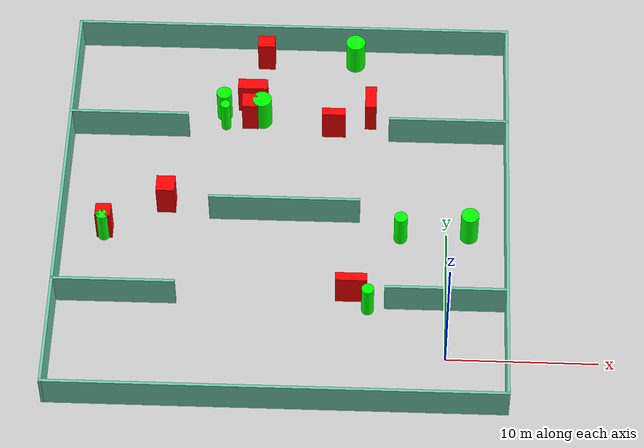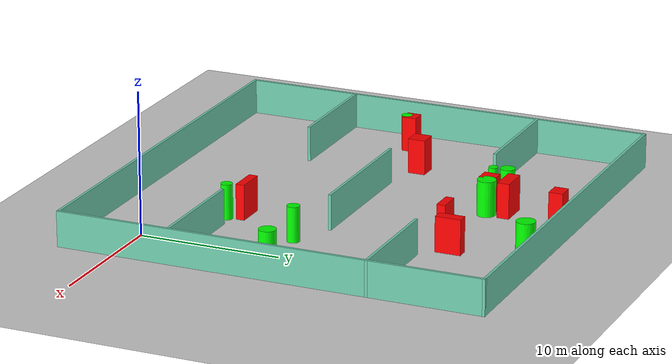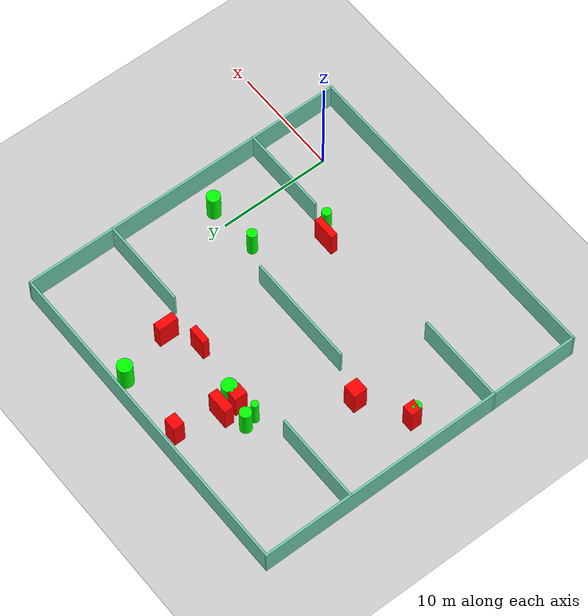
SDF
<sdf version="1.7">
 <world name="default">
  <light name="sun" type="directional">
   <pose>0 0 10 0 -0 0</pose>
   <diffuse>0.8 0.8 0.8 1</diffuse>
   <specular>0.2 0.2 0.2 1</specular>
   <attenuation>
    <range>1000</range>
    <constant>0.9</constant>
    <linear>0.01</linear>
    <quadratic>0.001</quadratic>
   </attenuation>
   <direction>-0.5 0.1 -0.9</direction>
   <spot><inner_angle>0</inner_angle><outer_angle>0</outer_angle><falloff>0</falloff></spot>
  </light>
  <model name="ground_plane">
   <static>1</static>
   <link name="link">
    <collision name="collision">
     <geometry><plane><normal>0 0 1</normal><size>100 100</size></plane></geometry>
     <surface>
      <contact><collide_bitmask>65535</collide_bitmask></contact>
      <friction><ode><mu>100</mu><mu2>50</mu2></ode></friction>
     </surface>
    </collision>
    <visual name="visual">
     <cast_shadows>0</cast_shadows>
     <geometry><plane><normal>0 0 1</normal><size>100 100</size></plane></geometry>
     <material>
      <script><uri>file://media/materials/scripts/gazebo.material</uri><name>Gazebo/Grey</name></script>
     </material>
    </visual>
   </link>
  </model>
  <gravity>0 0 -9.8</gravity>
  <magnetic_field>6e-06 2.3e-05 -4.2e-05</magnetic_field>
  <atmosphere type="adiabatic"/>
  <physics type="ode">
   <max_step_size>0.001</max_step_size>
   <real_time_factor>1</real_time_factor>
   <real_time_update_rate>1000</real_time_update_rate>
  </physics>
  <scene><ambient>0.4 0.4 0.4 1</ambient><background>0.7 0.7 0.7 1</background><shadows>1</shadows></scene>
  <spherical_coordinates>
   <surface_model>EARTH_WGS84</surface_model>
   <latitude_deg>0</latitude_deg>
   <longitude_deg>0</longitude_deg>
   <elevation>0</elevation>
   <heading_deg>0</heading_deg>
  </spherical_coordinates>
  <model name="my_base_walls">
   <link name="Wall_10">
    <collision name="Wall_10_Collision">
     <geometry><box><size>8.2 0.2 2.5</size></box></geometry>
     <pose>0 0 1.25 0 -0 0</pose>
    </collision>
    <visual name="Wall_10_Visual">
     <pose>0 0 1.25 0 -0 0</pose>
     <geometry><box><size>8.2 0.2 2.5</size></box></geometry>
     <material>
      <script><uri>file://media/materials/scripts/gazebo.material</uri><name>Gazebo/Grey</name></script>
      <ambient>0.435294 0.796078 0.67451 1</ambient>
     </material>
     <meta><layer>0</layer></meta>
    </visual>
    <pose>-11 -7 0 0 -0 0</pose>
   </link>
   <link name="Wall_12">
    <collision name="Wall_12_Collision">
     <geometry><box><size>8.2 0.2 2.5</size></box></geometry>
     <pose>0 0 1.25 0 -0 0</pose>
    </collision>
    <visual name="Wall_12_Visual">
     <pose>0 0 1.25 0 -0 0</pose>
     <geometry><box><size>8.2 0.2 2.5</size></box></geometry>
     <material>
      <script><uri>file://media/materials/scripts/gazebo.material</uri><name>Gazebo/Grey</name></script>
      <ambient>0.435294 0.796078 0.67451 1</ambient>
     </material>
     <meta><layer>0</layer></meta>
    </visual>
    <pose>-11 7 0 0 -0 0</pose>
   </link>
   <link name="Wall_14">
    <collision name="Wall_14_Collision">
     <geometry><box><size>8.2 0.2 2.5</size></box></geometry>
     <pose>0 0 1.25 0 -0 0</pose>
    </collision>
    <visual name="Wall_14_Visual">
     <pose>0 0 1.25 0 -0 0</pose>
     <geometry><box><size>8.2 0.2 2.5</size></box></geometry>
     <material>
      <script><uri>file://media/materials/scripts/gazebo.material</uri><name>Gazebo/Grey</name></script>
      <ambient>0.435294 0.796078 0.67451 1</ambient>
     </material>
     <meta><layer>0</layer></meta>
    </visual>
    <pose>11 7 0 0 -0 3.14159</pose>
   </link>
   <link name="Wall_16">
    <collision name="Wall_16_Collision">
     <geometry><box><size>10.2 0.2 2.5</size></box></geometry>
     <pose>0 0 1.25 0 -0 0</pose>
    </collision>
    <visual name="Wall_16_Visual">
     <pose>0 0 1.25 0 -0 0</pose>
     <geometry><box><size>10.2 0.2 2.5</size></box></geometry>
     <material>
      <script><uri>file://media/materials/scripts/gazebo.material</uri><name>Gazebo/Grey</name></script>
      <ambient>0.435294 0.796078 0.67451 1</ambient>
     </material>
     <meta><layer>0</layer></meta>
    </visual>
    <pose>0 0 0 0 -0 3.14159</pose>
   </link>
   <link name="Wall_2">
    <collision name="Wall_2_Collision">
     <geometry><box><size>30.2 0.2 2.5</size></box></geometry>
     <pose>0 0 1.25 0 -0 0</pose>
    </collision>
    <visual name="Wall_2_Visual">
     <pose>0 0 1.25 0 -0 0</pose>
     <geometry><box><size>30.2 0.2 2.5</size></box></geometry>
     <material>
      <script><uri>file://media/materials/scripts/gazebo.material</uri><name>Gazebo/Grey</name></script>
      <ambient>0.435294 0.796078 0.67451 1</ambient>
     </material>
     <meta><layer>0</layer></meta>
    </visual>
    <pose>0 -15 0 0 -0 3.14159</pose>
   </link>
   <link name="Wall_3">
    <collision name="Wall_3_Collision">
     <geometry><box><size>30.2 0.2 2.5</size></box></geometry>
     <pose>0 0 1.25 0 -0 0</pose>
    </collision>
    <visual name="Wall_3_Visual">
     <pose>0 0 1.25 0 -0 0</pose>
     <geometry><box><size>30.2 0.2 2.5</size></box></geometry>
     <material>
      <script><uri>file://media/materials/scripts/gazebo.material</uri><name>Gazebo/Grey</name></script>
      <ambient>0.435294 0.796078 0.67451 1</ambient>
     </material>
     <meta><layer>0</layer></meta>
    </visual>
    <pose>-15 0 0 0 -0 1.5708</pose>
   </link>
   <link name="Wall_4">
    <collision name="Wall_4_Collision">
     <geometry><box><size>30.2 0.2 2.5</size></box></geometry>
     <pose>0 0 1.25 0 -0 0</pose>
    </collision>
    <visual name="Wall_4_Visual">
     <pose>0 0 1.25 0 -0 0</pose>
     <geometry><box><size>30.2 0.2 2.5</size></box></geometry>
     <material>
      <script><uri>file://media/materials/scripts/gazebo.material</uri><name>Gazebo/Grey</name></script>
      <ambient>0.435294 0.796078 0.67451 1</ambient>
     </material>
     <meta><layer>0</layer></meta>
    </visual>
    <pose>0 15 0 0 -0 0</pose>
   </link>
   <link name="Wall_6">
    <collision name="Wall_6_Collision">
     <geometry><box><size>30.2 0.2 2.5</size></box></geometry>
     <pose>0 0 1.25 0 -0 0</pose>
    </collision>
    <visual name="Wall_6_Visual">
     <pose>0 0 1.25 0 -0 0</pose>
     <geometry><box><size>30.2 0.2 2.5</size></box></geometry>
     <material>
      <script><uri>file://media/materials/scripts/gazebo.material</uri><name>Gazebo/Grey</name></script>
      <ambient>0.435294 0.796078 0.67451 1</ambient>
     </material>
     <meta><layer>0</layer></meta>
    </visual>
    <pose>15 0 0 0 -0 1.5708</pose>
   </link>
   <link name="Wall_8">
    <collision name="Wall_8_Collision">
     <geometry><box><size>8.2 0.2 2.5</size></box></geometry>
     <pose>0 0 1.25 0 -0 0</pose>
    </collision>
    <visual name="Wall_8_Visual">
     <pose>0 0 1.25 0 -0 0</pose>
     <geometry><box><size>8.2 0.2 2.5</size></box></geometry>
     <material>
      <script><uri>file://media/materials/scripts/gazebo.material</uri><name>Gazebo/Grey</name></script>
      <ambient>0.435294 0.796078 0.67451 1</ambient>
     </material>
     <meta><layer>0</layer></meta>
    </visual>
    <pose>11 -7 0 0 -0 3.14159</pose>
   </link>
   <static>1</static>
   <pose>-11 11 0 0 -0 0</pose>
  </model>
  <model name="cylinder1">
   <static>1</static>
   <link name="link">
    <inertial>
     <mass>1</mass>
     <inertia><ixx>0.5</ixx><ixy>0</ixy><ixz>0</ixz><iyy>0.5</iyy><iyz>0</iyz><izz>1</izz></inertia>
    </inertial>
    <collision name="collision">
     <geometry><cylinder><radius>0.6587758436409569</radius><length>2.5</length></cylinder></geometry>
    </collision>
    <visual name="visual">
     <geometry><cylinder><radius>0.6587758436409569</radius><length>2.5</length></cylinder></geometry>
     <material>
      <ambient>0 1 0 1</ambient>
      <diffuse>0 1 0 1</diffuse>
      <specular>0.1 0.1 0.1 1</specular>
      <emissive>0 0 0 0</emissive>
     </material>
    </visual>
   </link>
   <pose>-6.5722252720544425 24.667724487268828 1.25 0 0 0</pose>
  </model>
  <model name="cylinder2">
   <static>1</static>
   <link name="link">
    <inertial>
     <mass>1</mass>
     <inertia><ixx>0.5</ixx><ixy>0</ixy><ixz>0</ixz><iyy>0.5</iyy><iyz>0</iyz><izz>1</izz></inertia>
    </inertial>
    <collision name="collision">
     <geometry><cylinder><radius>0.4431934939977542</radius><length>2.5</length></cylinder></geometry>
    </collision>
    <visual name="visual">
     <geometry><cylinder><radius>0.4431934939977542</radius><length>2.5</length></cylinder></geometry>
     <material>
      <ambient>0 1 0 1</ambient>
      <diffuse>0 1 0 1</diffuse>
      <specular>0.1 0.1 0.1 1</specular>
      <emissive>0 0 0 0</emissive>
     </material>
    </visual>
   </link>
   <pose>-3.1211236333717807 9.644026409240125 1.25 0 0 0</pose>
  </model>
  <model name="cylinder3">
   <static>1</static>
   <link name="link">
    <inertial>
     <mass>1</mass>
     <inertia><ixx>0.5</ixx><ixy>0</ixy><ixz>0</ixz><iyy>0.5</iyy><iyz>0</iyz><izz>1</izz></inertia>
    </inertial>
    <collision name="collision">
     <geometry><cylinder><radius>0.6595282054459375</radius><length>2.5</length></cylinder></geometry>
    </collision>
    <visual name="visual">
     <geometry><cylinder><radius>0.6595282054459375</radius><length>2.5</length></cylinder></geometry>
     <material>
      <ambient>0 1 0 1</ambient>
      <diffuse>0 1 0 1</diffuse>
      <specular>0.1 0.1 0.1 1</specular>
      <emissive>0 0 0 0</emissive>
     </material>
    </visual>
   </link>
   <pose>-12.899482457612534 19.40593960493163 1.25 0 0 0</pose>
  </model>
  <model name="cylinder4">
   <static>1</static>
   <link name="link">
    <inertial>
     <mass>1</mass>
     <inertia><ixx>0.5</ixx><ixy>0</ixy><ixz>0</ixz><iyy>0.5</iyy><iyz>0</iyz><izz>1</izz></inertia>
    </inertial>
    <collision name="collision">
     <geometry><cylinder><radius>0.397818916493045</radius><length>2.5</length></cylinder></geometry>
    </collision>
    <visual name="visual">
     <geometry><cylinder><radius>0.397818916493045</radius><length>2.5</length></cylinder></geometry>
     <material>
      <ambient>0 1 0 1</ambient>
      <diffuse>0 1 0 1</diffuse>
      <specular>0.1 0.1 0.1 1</specular>
      <emissive>0 0 0 0</emissive>
     </material>
    </visual>
   </link>
   <pose>-23.12791084748967 9.260827004152041 1.25 0 0 0</pose>
  </model>
  <model name="cylinder5">
   <static>1</static>
   <link name="link">
    <inertial>
     <mass>1</mass>
     <inertia><ixx>0.5</ixx><ixy>0</ixy><ixz>0</ixz><iyy>0.5</iyy><iyz>0</iyz><izz>1</izz></inertia>
    </inertial>
    <collision name="collision">
     <geometry><cylinder><radius>0.5200615273057083</radius><length>2.5</length></cylinder></geometry>
    </collision>
    <visual name="visual">
     <geometry><cylinder><radius>0.5200615273057083</radius><length>2.5</length></cylinder></geometry>
     <material>
      <ambient>0 1 0 1</ambient>
      <diffuse>0 1 0 1</diffuse>
      <specular>0.1 0.1 0.1 1</specular>
      <emissive>0 0 0 0</emissive>
     </material>
    </visual>
   </link>
   <pose>-15.551145382295665 19.87653316646815 1.25 0 0 0</pose>
  </model>
  <model name="cylinder6">
   <static>1</static>
   <link name="link">
    <inertial>
     <mass>1</mass>
     <inertia><ixx>0.5</ixx><ixy>0</ixy><ixz>0</ixz><iyy>0.5</iyy><iyz>0</iyz><izz>1</izz></inertia>
    </inertial>
    <collision name="collision">
     <geometry><cylinder><radius>0.5947406003327699</radius><length>2.5</length></cylinder></geometry>
    </collision>
    <visual name="visual">
     <geometry><cylinder><radius>0.5947406003327699</radius><length>2.5</length></cylinder></geometry>
     <material>
      <ambient>0 1 0 1</ambient>
      <diffuse>0 1 0 1</diffuse>
      <specular>0.1 0.1 0.1 1</specular>
      <emissive>0 0 0 0</emissive>
     </material>
    </visual>
   </link>
   <pose>1.501412820592396 9.934637596754744 1.25 0 0 0</pose>
  </model>
  <model name="cylinder7">
   <static>1</static>
   <link name="link">
    <inertial>
     <mass>1</mass>
     <inertia><ixx>0.5</ixx><ixy>0</ixy><ixz>0</ixz><iyy>0.5</iyy><iyz>0</iyz><izz>1</izz></inertia>
    </inertial>
    <collision name="collision">
     <geometry><cylinder><radius>0.3296568805382856</radius><length>2.5</length></cylinder></geometry>
    </collision>
    <visual name="visual">
     <geometry><cylinder><radius>0.3296568805382856</radius><length>2.5</length></cylinder></geometry>
     <material>
      <ambient>0 1 0 1</ambient>
      <diffuse>0 1 0 1</diffuse>
      <specular>0.1 0.1 0.1 1</specular>
      <emissive>0 0 0 0</emissive>
     </material>
    </visual>
   </link>
   <pose>-15.408040418635892 18.88020815842639 1.25 0 0 0</pose>
  </model>
  <model name="cylinder8">
   <static>1</static>
   <link name="link">
    <inertial>
     <mass>1</mass>
     <inertia><ixx>0.5</ixx><ixy>0</ixy><ixz>0</ixz><iyy>0.5</iyy><iyz>0</iyz><izz>1</izz></inertia>
    </inertial>
    <collision name="collision">
     <geometry><cylinder><radius>0.40875924709015277</radius><length>2.5</length></cylinder></geometry>
    </collision>
    <visual name="visual">
     <geometry><cylinder><radius>0.40875924709015277</radius><length>2.5</length></cylinder></geometry>
     <material>
      <ambient>0 1 0 1</ambient>
      <diffuse>0 1 0 1</diffuse>
      <specular>0.1 0.1 0.1 1</specular>
      <emissive>0 0 0 0</emissive>
     </material>
    </visual>
   </link>
   <pose>-5.190460256952079 3.7669629214158498 1.25 0 0 0</pose>
  </model>
  <model name="box1">
   <static>1</static>
   <link name="link">
    <inertial>
     <mass>1</mass>
     <inertia><ixx>0.083</ixx><ixy>0</ixy><ixz>0</ixz><iyy>0.083</iyy><iyz>0</iyz><izz>0.083</izz></inertia>
    </inertial>
    <collision name="collision">
     <geometry><box><size>2.0995313359827676 0.6082980999692631 2.5</size></box></geometry>
    </collision>
    <visual name="visual">
     <geometry><box><size>2.0995313359827676 0.6082980999692631 2.5</size></box></geometry>
     <material>
      <ambient>1 0 0 1</ambient>
      <diffuse>1 0 0 1</diffuse>
      <specular>0.1 0.1 0.1 1</specular>
      <emissive>0 0 0 0</emissive>
     </material>
    </visual>
    <sensor name="my_contact" type="contact">
     <contact><collision>box_collision</collision><topic>__default_topic__</topic></contact>
    </sensor>
   </link>
   <pose>-6.318054946039322 4.709551017431178 1.25 0 0 0</pose>
  </model>
  <model name="box2">
   <static>1</static>
   <link name="link">
    <inertial>
     <mass>1</mass>
     <inertia><ixx>0.083</ixx><ixy>0</ixy><ixz>0</ixz><iyy>0.083</iyy><iyz>0</iyz><izz>0.083</izz></inertia>
    </inertial>
    <collision name="collision">
     <geometry><box><size>2.0417945940010807 0.8491401220348807 2.5</size></box></geometry>
    </collision>
    <visual name="visual">
     <geometry><box><size>2.0417945940010807 0.8491401220348807 2.5</size></box></geometry>
     <material>
      <ambient>1 0 0 1</ambient>
      <diffuse>1 0 0 1</diffuse>
      <specular>0.1 0.1 0.1 1</specular>
      <emissive>0 0 0 0</emissive>
     </material>
    </visual>
    <sensor name="my_contact" type="contact">
     <contact><collision>box_collision</collision><topic>__default_topic__</topic></contact>
    </sensor>
   </link>
   <pose>-13.589745282577642 20.72355638082487 1.25 0 0 0</pose>
  </model>
  <model name="box3">
   <static>1</static>
   <link name="link">
    <inertial>
     <mass>1</mass>
     <inertia><ixx>0.083</ixx><ixy>0</ixy><ixz>0</ixz><iyy>0.083</iyy><iyz>0</iyz><izz>0.083</izz></inertia>
    </inertial>
    <collision name="collision">
     <geometry><box><size>1.0480427786995155 1.0280571903683873 2.5</size></box></geometry>
    </collision>
    <visual name="visual">
     <geometry><box><size>1.0480427786995155 1.0280571903683873 2.5</size></box></geometry>
     <material>
      <ambient>1 0 0 1</ambient>
      <diffuse>1 0 0 1</diffuse>
      <specular>0.1 0.1 0.1 1</specular>
      <emissive>0 0 0 0</emissive>
     </material>
    </visual>
    <sensor name="my_contact" type="contact">
     <contact><collision>box_collision</collision><topic>__default_topic__</topic></contact>
    </sensor>
   </link>
   <pose>-23.092371358146973 9.62077254683454 1.25 0 0 0</pose>
  </model>
  <model name="box4">
   <static>1</static>
   <link name="link">
    <inertial>
     <mass>1</mass>
     <inertia><ixx>0.083</ixx><ixy>0</ixy><ixz>0</ixz><iyy>0.083</iyy><iyz>0</iyz><izz>0.083</izz></inertia>
    </inertial>
    <collision name="collision">
     <geometry><box><size>1.1751670101149636 0.991018229253542 2.5</size></box></geometry>
    </collision>
    <visual name="visual">
     <geometry><box><size>1.1751670101149636 0.991018229253542 2.5</size></box></geometry>
     <material>
      <ambient>1 0 0 1</ambient>
      <diffuse>1 0 0 1</diffuse>
      <specular>0.1 0.1 0.1 1</specular>
      <emissive>0 0 0 0</emissive>
     </material>
    </visual>
    <sensor name="my_contact" type="contact">
     <contact><collision>box_collision</collision><topic>__default_topic__</topic></contact>
    </sensor>
   </link>
   <pose>-12.825840795656337 24.58688964617344 1.25 0 0 0</pose>
  </model>
  <model name="box5">
   <static>1</static>
   <link name="link">
    <inertial>
     <mass>1</mass>
     <inertia><ixx>0.083</ixx><ixy>0</ixy><ixz>0</ixz><iyy>0.083</iyy><iyz>0</iyz><izz>0.083</izz></inertia>
    </inertial>
    <collision name="collision">
     <geometry><box><size>0.7702696870114687 1.802516305640852 2.5</size></box></geometry>
    </collision>
    <visual name="visual">
     <geometry><box><size>0.7702696870114687 1.802516305640852 2.5</size></box></geometry>
     <material>
      <ambient>1 0 0 1</ambient>
      <diffuse>1 0 0 1</diffuse>
      <specular>0.1 0.1 0.1 1</specular>
      <emissive>0 0 0 0</emissive>
     </material>
    </visual>
    <sensor name="my_contact" type="contact">
     <contact><collision>box_collision</collision><topic>__default_topic__</topic></contact>
    </sensor>
   </link>
   <pose>-5.381620755827512 19.836017685854035 1.25 0 0 0</pose>
  </model>
  <model name="box6">
   <static>1</static>
   <link name="link">
    <inertial>
     <mass>1</mass>
     <inertia><ixx>0.083</ixx><ixy>0</ixy><ixz>0</ixz><iyy>0.083</iyy><iyz>0</iyz><izz>0.083</izz></inertia>
    </inertial>
    <collision name="collision">
     <geometry><box><size>1.0997079797949834 1.1492722990559257 2.5</size></box></geometry>
    </collision>
    <visual name="visual">
     <geometry><box><size>1.0997079797949834 1.1492722990559257 2.5</size></box></geometry>
     <material>
      <ambient>1 0 0 1</ambient>
      <diffuse>1 0 0 1</diffuse>
      <specular>0.1 0.1 0.1 1</specular>
      <emissive>0 0 0 0</emissive>
     </material>
    </visual>
    <sensor name="my_contact" type="contact">
     <contact><collision>box_collision</collision><topic>__default_topic__</topic></contact>
    </sensor>
   </link>
   <pose>-13.714217263500073 19.296062558206078 1.25 0 0 0</pose>
  </model>
  <model name="box7">
   <static>1</static>
   <link name="link">
    <inertial>
     <mass>1</mass>
     <inertia><ixx>0.083</ixx><ixy>0</ixy><ixz>0</ixz><iyy>0.083</iyy><iyz>0</iyz><izz>0.083</izz></inertia>
    </inertial>
    <collision name="collision">
     <geometry><box><size>1.254666796235984 1.2423796166400476 2.5</size></box></geometry>
    </collision>
    <visual name="visual">
     <geometry><box><size>1.254666796235984 1.2423796166400476 2.5</size></box></geometry>
     <material>
      <ambient>1 0 0 1</ambient>
      <diffuse>1 0 0 1</diffuse>
      <specular>0.1 0.1 0.1 1</specular>
      <emissive>0 0 0 0</emissive>
     </material>
    </visual>
    <sensor name="my_contact" type="contact">
     <contact><collision>box_collision</collision><topic>__default_topic__</topic></contact>
    </sensor>
   </link>
   <pose>-19.05583675196602 11.95533226310632 1.25 0 0 0</pose>
  </model>
  <model name="box8">
   <static>1</static>
   <link name="link">
    <inertial>
     <mass>1</mass>
     <inertia><ixx>0.083</ixx><ixy>0</ixy><ixz>0</ixz><iyy>0.083</iyy><iyz>0</iyz><izz>0.083</izz></inertia>
    </inertial>
    <collision name="collision">
     <geometry><box><size>1.628253626623595 0.602372717573076 2.5</size></box></geometry>
    </collision>
    <visual name="visual">
     <geometry><box><size>1.628253626623595 0.602372717573076 2.5</size></box></geometry>
     <material>
      <ambient>1 0 0 1</ambient>
      <diffuse>1 0 0 1</diffuse>
      <specular>0.1 0.1 0.1 1</specular>
      <emissive>0 0 0 0</emissive>
     </material>
    </visual>
    <sensor name="my_contact" type="contact">
     <contact><collision>box_collision</collision><topic>__default_topic__</topic></contact>
    </sensor>
   </link>
   <pose>-7.908714270490886 18.473111278871997 1.25 0 0 0</pose>
  </model>
 </world>
</sdf>
